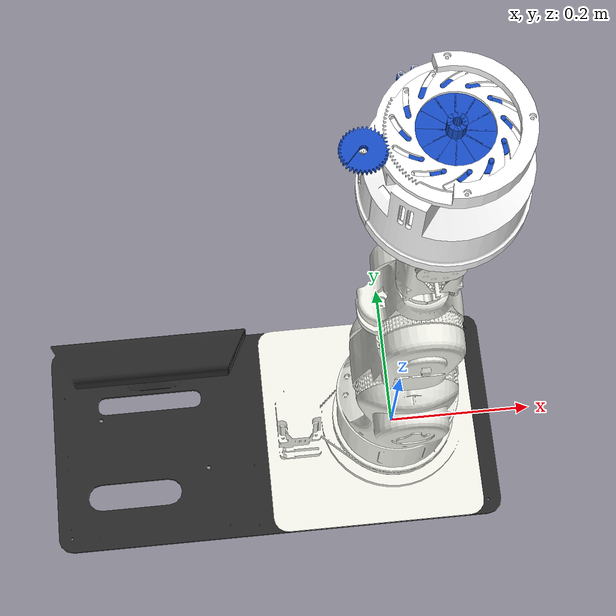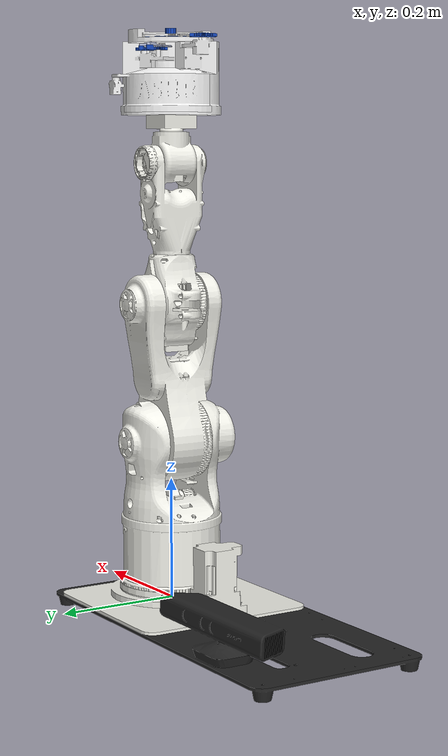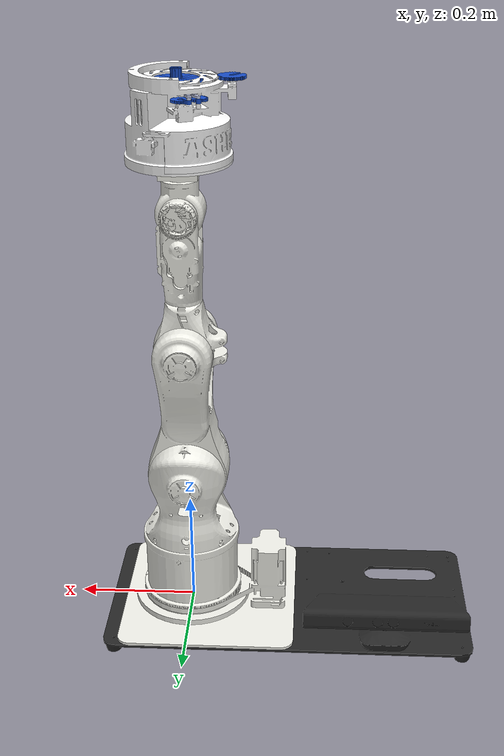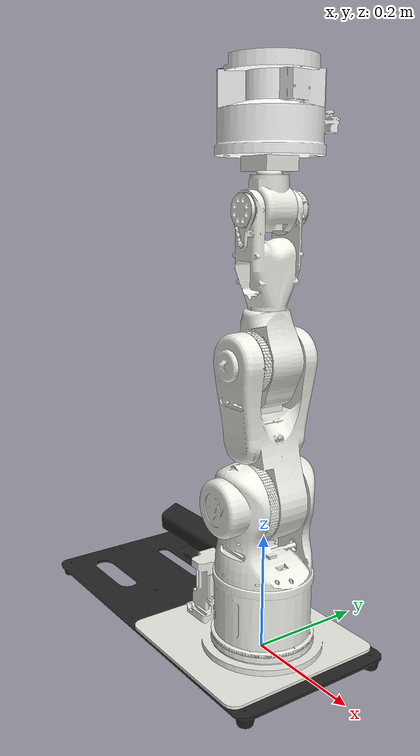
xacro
<?xml version="1.0"?>
<robot xmlns:xacro="http://www.ros.org/wiki/xacro" name="probot_anno">

    <xacro:arg name="initial_positions_file" default="$(find moveit_config)/config/initial_positions.yaml" />

    <xacro:arg name="use_mock_hardware" default="true" />
    <xacro:arg name="use_real_hardware" default="false" />
    <xacro:arg name="use_gazebo" default="false" />
    <xacro:arg name="use_isaac" default="false" />

    <xacro:include filename="$(find probot_description)/urdf/probot_anno_macro.xacro" />
    <xacro:include filename="$(find probot_description)/urdf/gripper_macro.xacro" />
    <xacro:include filename="$(find probot_description)/urdf/probot.ros2_control.xacro" />

    <xacro:probot_anno_macro use_gazebo="$(arg use_gazebo)" />

    <xacro:probot_gripper parent="link_6" use_gazebo="$(arg use_gazebo)" />

    <xacro:probot_anno_ros2_control
        name="ProbotSystem"
        initial_positions_file="$(arg initial_positions_file)"
        use_mock_hardware="$(arg use_mock_hardware)"
        use_real_hardware="$(arg use_real_hardware)"
        use_gazebo="$(arg use_gazebo)"
        use_isaac="$(arg use_isaac)"
    />

    <xacro:if value="$(arg use_gazebo)">
        <gazebo>
            <plugin filename="ign_ros2_control-system" name="ign_ros2_control::IgnitionROS2ControlPlugin">
                <parameters>$(find moveit_config)/config/ros2_controllers.yaml</parameters>
            </plugin>
        </gazebo>
    </xacro:if>

</robot>

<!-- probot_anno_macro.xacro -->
<robot xmlns:xacro="http://ros.org/wiki/xacro">

  <xacro:macro name="probot_anno_macro" params="use_gazebo">
    <xacro:property name="M_PI" value="3.1415926536"/>

    <!-- Materials -->
    <material name="offwhite">
      <color rgba="0.95 0.95 0.92 1" />
    </material>
    <material name="kinect_dark">
      <color rgba="0.15 0.15 0.15 1" /> <!-- The classic dark matte grey of the Kinect -->
    </material>

    <!-- Fix robot to world -->
    <link name="world"/>
    <joint name="world_to_robot_base" type="fixed">
      <origin xyz="0 0 0" rpy="0 0 0" />
      <parent link="world" />
      <child link="robot_base" />
    </joint>

    <!-- New Robot Base -->
    <link name="robot_base">
      <inertial>
        <origin xyz="-0.26475 0.051293 0.019346" rpy="0 0 0" />
        <mass value="1.4191" />
        <inertia ixx="0.012341" ixy="0.0054099" ixz="0.0023347" iyy="0.03677" iyz="-0.0018374" izz="0.047034" />
      </inertial>
      <visual>
        <origin xyz="0 0 0" rpy="0 0 0" />
        <geometry>
          <mesh filename="package://probot_description/meshes/robot_base.STL" />
        </geometry>
      <material name="kinect_dark" />
      </visual>
      <collision>
        <origin xyz="0 0 0" rpy="0 0 0" />
        <geometry>
          <mesh filename="package://probot_description/meshes/robot_base.STL" />
        </geometry>
      </collision>
    </link>

    <!-- Kinect optical frames -->
    <link name="camera_link1"/>
    <joint name="camera_joint1" type="fixed">
      <origin xyz="-0.27393 0.13681 0.05339" rpy="-1.509 0 0" />
      <parent link="robot_base" />
      <child link="camera_link1" />
    </joint>

    <link name="camera_link2"/>
    <joint name="camera_joint2" type="fixed">
      <origin xyz="-0.32393 0.13681 0.05339" rpy="-1.509 0 0" />
      <parent link="robot_base" />
      <child link="camera_link2" />
    </joint>

    <link name="camera_link3"/>
    <joint name="camera_joint3" type="fixed">
      <origin xyz="-0.34993 0.13681 0.05339" rpy="-1.509 0 0" />
      <parent link="robot_base" />
      <child link="camera_link3" />
    </joint>

    <link name="base_footprint"/>
    <joint name="robot_base_to_base_footprint" type="fixed">
      <origin xyz="0 0 -0.017" rpy="0 0 0"/>
      <parent link="robot_base"/>
      <child link="base_footprint"/>
    </joint>

    <joint name="joint_0" type="fixed">
      <origin xyz="0 0 0.0532" rpy="0 0 0" />
      <parent link="base_footprint" />
      <child link="base_link" />
    </joint>

    <link name="base_link">
      <inertial>
        <origin xyz="-0.010934 0.23134 0.0051509" rpy="0 0 0" />
        <mass value="0.286755864167795" />
        <inertia
          ixx="0.000914891478336648" ixy="-9.74616219194614E-08" ixz="-1.22707969258407E-10"
          iyy="0.000918304334803416" iyz="-7.53317610970858E-09" izz="0.00181941891671005" />
      </inertial>
      <visual>
        <origin xyz="0.017266 0 0" rpy="0 0 0" />
        <geometry>
          <mesh filename="package://probot_description/meshes/new_base_link.stl" />
        </geometry>
      <material name="offwhite" />
      </visual>
      <collision>
        <origin xyz="0.017266 0 0" rpy="0 0 0" />
        <geometry>
          <mesh filename="package://probot_description/meshes/new_base_link.stl" />
        </geometry>
      </collision>
    </link>

    <link name="link_1">
      <inertial>
        <origin xyz="-0.010934 0.23134 0.0051509" rpy="0 0 0" />
        <mass value="1.50473234946919" />
        <inertia
          ixx="0.00667121219534555" ixy="-8.54445620252032E-06" ixz="1.56560865622562E-07"
          iyy="0.00595997019373921" iyz="0.000424090863023404" izz="0.006430374759868" />
      </inertial>
      <visual>
        <origin xyz="0 0 0" rpy="0 0 0" />
        <geometry>
          <mesh filename="package://probot_description/meshes/link_1.STL" />
        </geometry>
        <material name="offwhite" />
      </visual>
      <collision>
        <origin xyz="0 0 0" rpy="0 0 0" />
        <geometry>
          <mesh filename="package://probot_description/meshes/link_1.STL" />
        </geometry>
      </collision>
    </link>
    <joint name="joint_1" type="revolute">
      <origin xyz="0 0 0" rpy="1.5708 0 0" />
      <parent link="base_link" />
      <child link="link_1" />
      <axis xyz="0 1 0" />
      <limit lower="-3.1416" upper="3.1416" effort="100" velocity="3" />
    </joint>

    <link name="link_2">
      <inertial>
        <origin xyz="-0.010934 0.23134 0.0051509" rpy="0 0 0" />
        <mass value="1.00050619907027" />
        <inertia
          ixx="0.0014522332353461" ixy="-8.9482731163037E-06" ixz="2.82386498605548E-05"
          iyy="0.00136522040691973" iyz="3.07414967244519E-06" izz="0.0024851244648194" />
      </inertial>
      <visual>
        <origin xyz="0 0 0" rpy="0 0 0" />
        <geometry>
          <mesh filename="package://probot_description/meshes/link_2.STL" />
        </geometry>
        <material name="offwhite" />
      </visual>
      <collision>
        <origin xyz="0 0 0" rpy="0 0 0" />
        <geometry>
          <mesh filename="package://probot_description/meshes/link_2.STL" />
        </geometry>
      </collision>
    </link>
    <joint name="joint_2" type="revolute">
      <origin xyz="0 0.2305 0" rpy="0 0 0" />
      <parent link="link_1" />
      <child link="link_2" />
      <axis xyz="0 0 1" />
      <limit lower="-2.0071" upper="2.0071" effort="100" velocity="3" />
    </joint>

    <link name="link_3">
      <inertial>
        <origin xyz="-0.010934 0.23134 0.0051509" rpy="0 0 0" />
        <mass value="0.549520755006072" />
        <inertia
          ixx="0.000672536702276881" ixy="-6.59360128441997E-06" ixz="-9.19434642556495E-07"
          iyy="0.000480817179261754" iyz="4.15241325610066E-06" izz="0.001032595781869" />
      </inertial>
      <visual>
        <origin xyz="0 0 0" rpy="0 0 0" />
        <geometry>
          <mesh filename="package://probot_description/meshes/link_3.STL" />
        </geometry>
        <material name="offwhite" />
      </visual>
      <collision>
        <origin xyz="0 0 0" rpy="0 0 0" />
        <geometry>
          <mesh filename="package://probot_description/meshes/link_3.STL" />
        </geometry>
      </collision>
    </link>
    <joint name="joint_3" type="revolute">
      <origin xyz="0 0.225 0" rpy="0 0 1.5708" />
      <parent link="link_2" />
      <child link="link_3" />
      <axis xyz="0 0 1" />
      <limit lower="-2.2689" upper="2.2689" effort="100" velocity="3" />
    </joint>

    <link name="link_4">
      <inertial>
        <origin xyz="-0.010934 0.23134 0.0051509" rpy="0 0 0" />
        <mass value="0.952497713016407" />
        <inertia
          ixx="0.00530614361480367" ixy="7.10404845280282E-20" ixz="-3.14301719378985E-20"
          iyy="0.00354259274696511" iyz="-6.5480532041068E-19" izz="0.00221010202882688" />
      </inertial>
      <visual>
        <origin xyz="0 0 0" rpy="0 0 0" />
        <geometry>
          <mesh filename="package://probot_description/meshes/link_4.STL" />
        </geometry>
        <material name="offwhite" />
      </visual>
      <collision>
        <origin xyz="0 0 0" rpy="0 0 0" />
        <geometry>
          <mesh filename="package://probot_description/meshes/link_4.STL" />
        </geometry>
      </collision>
    </link>
    <joint name="joint_4" type="revolute">
      <origin xyz="0.021 0 0.002" rpy="0 0 0" />
      <parent link="link_3" />
      <child link="link_4" />
      <axis xyz="1 0 0" />
      <limit lower="-3.1416" upper="3.1416" effort="100" velocity="3" />
    </joint>

    <link name="link_5">
      <inertial>
        <origin xyz="-0.010934 0.23134 0.0051509" rpy="0 0 0" />
        <mass value="0.393287799668792" />
        <inertia
          ixx="0.000319382332386347" ixy="-9.00754957688623E-10" ixz="-1.75182555785641E-09"
          iyy="0.000272873273899642" iyz="-4.5738506474632E-10" izz="0.000292993325719614" />
      </inertial>
      <visual>
        <origin xyz="0 0 0" rpy="0 0 0" />
        <geometry>
          <mesh filename="package://probot_description/meshes/link_5.STL" />
        </geometry>
        <material name="offwhite" />
      </visual>
      <collision>
        <origin xyz="0 0 0" rpy="0 0 0" />
        <geometry>
          <mesh filename="package://probot_description/meshes/link_5.STL" />
        </geometry>
      </collision>
    </link>
    <joint name="joint_5" type="revolute">
      <origin xyz="0.20586 0 0" rpy="0 0 1.5708" />
      <parent link="link_4" />
      <child link="link_5" />
      <axis xyz="0 0 1" />
      <limit lower="-2.3562" upper="2.3562" effort="100" velocity="3" />
    </joint>

    <link name="link_6">
      <inertial>
        <origin xyz="-0.010934 0.23134 0.0051509" rpy="0 0 0" />
        <mass value="0.00628105868776632" />
        <inertia
          ixx="5.52992389755476E-07" ixy="-2.81554428275222E-22" ixz="-1.40088624914581E-22"
          iyy="5.52992389755476E-07" iyz="4.83070888700992E-24" izz="1.08002978042972E-06" />
      </inertial>
      <visual>
        <origin xyz="0 0 0" rpy="0 0 0" />
        <geometry>
          <mesh filename="package://probot_description/meshes/link_6.STL" />
        </geometry>
        <material name="offwhite" />
      </visual>
      <collision>
        <origin xyz="0 0 0" rpy="0 0 0" />
        <geometry>
          <mesh filename="package://probot_description/meshes/link_6.STL" />
        </geometry>
      </collision>
    </link>
    <joint name="joint_6" type="revolute">
      <origin xyz="0 -0.042 0" rpy="0 0 0" />
      <parent link="link_5" />
      <child link="link_6" />
      <axis xyz="0 -1 0" />
      <limit lower="-3.1416" upper="3.1416" effort="100" velocity="3" />
    </joint>

    <!-- GAZEBO SENSORS: KINECT RGB-D                              -->
    <xacro:if value="${use_gazebo}">
      <gazebo reference="camera_link2">
        <sensor name="kinect_rgbd" type="rgbd_camera">
          <pose>0 0 0.01 1.5708 -1.5708 0</pose>
          <always_on>true</always_on>
          <update_rate>30.0</update_rate>
          <visualize>true</visualize>
          <topic>/camera/kinect</topic>
          <camera>
            <horizontal_fov>1.047</horizontal_fov>
            <image>
              <width>640</width>
              <height>480</height>
              <format>R8G8B8</format>
            </image>
            <clip>
              <near>0.05</near>
              <far>10.0</far>
            </clip>
          </camera>
        </sensor>
      </gazebo>
    </xacro:if>

    </xacro:macro>
</robot>

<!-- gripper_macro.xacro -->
<robot xmlns:xacro="http://ros.org/wiki/xacro">

  <xacro:macro name="probot_gripper" params="parent use_gazebo">

    <!-- Standardized Gripper Materials -->
    <material name="gripper_white">
      <color rgba="1 1 1 1" />
    </material>
    <material name="gripper_blue">
      <color rgba="0.094118 0.30196 0.77647 1" />
    </material>
    <material name="gripper_body">
      <color rgba="0.79216 0.81961 0.93333 1" />
    </material>

    <!-- Attachment joint to Link_6 -->
    <joint name="arm_gripper_joint" type="fixed">
      <origin xyz="0 -0.013 0" rpy="1.5708 0 0" />
      <parent link="${parent}" />
      <child link="Container_link" />
    </joint>

    <!-- Main Container -->
    <link name="Container_link">
      <inertial>
        <origin xyz="-0.007738 0.003131 0.081807" rpy="0 0 0" />
        <mass value="0.57288" />
        <inertia ixx="0.0024146" ixy="-0.00017007" ixz="-1.9739E-05" iyy="0.0023925" iyz="7.7694E-05" izz="0.0020505" />
      </inertial>
      <visual>
        <origin xyz="0 0 0" rpy="0 0 0" />
        <geometry>
          <mesh filename="package://probot_description/meshes/Container_link.STL" />
        </geometry>
        <material name="gripper_white" />
      </visual>
      <collision>
        <origin xyz="0 0 0" rpy="0 0 0" />
        <geometry>
          <mesh filename="package://probot_description/meshes/Container_link.STL" />
        </geometry>
      </collision>
    </link>

    <!-- Door -->
    <link name="Door_Link">
      <inertial>
        <origin xyz="0.079847 -0.042299 0.026388" rpy="0 0 0" />
        <mass value="0.072634" />
        <inertia ixx="9.2526E-05" ixy="5.1964E-05" ixz="-6.1919E-06" iyy="7.7534E-05" iyz="2.6661E-06" izz="0.00012337" />
      </inertial>
      <visual>
        <origin xyz="0 0 0" rpy="0 0 0" />
        <geometry>
          <mesh filename="package://probot_description/meshes/Door_Link.STL" />
        </geometry>
        <material name="gripper_white" />
      </visual>
      <collision>
        <origin xyz="0 0 0" rpy="0 0 0" />
        <geometry>
          <mesh filename="package://probot_description/meshes/Door_Link.STL" />
        </geometry>
      </collision>
    </link>
    <joint name="Door_Joint" type="revolute">
      <origin xyz="-0.0325765613470637 -0.0827398002739313 0.0809999999999903" rpy="-3.14159265358979 0 0" />
      <parent link="Container_link" />
      <child link="Door_Link" />
      <axis xyz="0 0 -1" />
      <limit lower="-3.14" upper="0" effort="10" velocity="6.26" />
    </joint>

    <!-- Active Scissors System -->
    <link name="Active_Scissors_Gear_Link">
      <inertial>
        <origin xyz="0.0013957 -0.0014497 0.0028995" rpy="0 0 0" />
        <mass value="0.0028486" />
        <inertia ixx="1.8787E-07" ixy="5.3502E-08" ixz="-3.0229E-09" iyy="1.8466E-07" iyz="3.0861E-09" izz="3.6285E-07" />
      </inertial>
      <visual>
        <origin xyz="0 0 0" rpy="0 0 0" />
        <geometry>
          <mesh filename="package://probot_description/meshes/Active_Scissors_Gear_Link.STL" />
        </geometry>
        <material name="gripper_blue" />
      </visual>
      <collision>
        <origin xyz="0 0 0" rpy="0 0 0" />
        <geometry>
          <mesh filename="package://probot_description/meshes/Active_Scissors_Gear_Link.STL" />
        </geometry>
      </collision>
    </link>
    <joint name="Active_Scissors_Gear_Joint" type="revolute">
      <origin xyz="0.0116745834389464 -0.0551236385761704 0.122199999999998" rpy="0 0 0" />
      <parent link="Container_link" />
      <child link="Active_Scissors_Gear_Link" />
      <axis xyz="0 0 -1" />
      <limit lower="0" upper="0.5" effort="10" velocity="6.28" />
    </joint>

    <link name="Active_Blade_Link">
      <inertial>
        <origin xyz="-0.00876871024480015 0.0311631307249487 0.00193034918440163" rpy="0 0 0" />
        <mass value="0.00120822711123095" />
        <inertia ixx="6.98348086660056E-07" ixy="2.41232682980469E-07" ixz="-2.3592171209022E-09" iyy="9.13337738958124E-08" iyz="6.93196770741286E-09" izz="7.86989865387403E-07" />
      </inertial>
      <visual>
        <origin xyz="0 0 0" rpy="0 0 0" />
        <geometry>
          <mesh filename="package://probot_description/meshes/Active_Blade_Link.STL" />
        </geometry>
        <material name="gripper_body" />
      </visual>
      <collision>
        <origin xyz="0 0 0" rpy="0 0 0" />
        <geometry>
          <mesh filename="package://probot_description/meshes/Active_Blade_Link.STL" />
        </geometry>
      </collision>
    </link>
    <joint name="Active_Blade_Joint" type="fixed">
      <origin xyz="0.0136451186878765 -0.0139305684016784 0.00689999999999995" rpy="0 0 0" />
      <parent link="Active_Scissors_Gear_Link" />
      <child link="Active_Blade_Link" />
    </joint>

    <!-- Passive Scissors System -->
    <link name="Passive_Scissors_Gear_Link">
      <inertial>
        <origin xyz="0.00040984 -0.003076 0.0022713" rpy="0 0 0" />
        <mass value="0.0032079" />
        <inertia ixx="2.8043E-07" ixy="1.9421E-08" ixz="-1.8444E-09" iyy="1.3877E-07" iyz="1.3404E-08" izz="4.0476E-07" />
      </inertial>
      <visual>
        <origin xyz="0 0 0" rpy="0 0 0" />
        <geometry>
          <mesh filename="package://probot_description/meshes/Passive_Scissors_Gear_Link.STL" />
        </geometry>
        <material name="gripper_blue" />
      </visual>
      <collision>
        <origin xyz="0 0 0" rpy="0 0 0" />
        <geometry>
          <mesh filename="package://probot_description/meshes/Passive_Scissors_Gear_Link.STL" />
        </geometry>
      </collision>
    </link>
    <joint name="Passive_Scissors_Gear_Joint" type="revolute">
      <origin xyz="0.0356480493609751 -0.0439561747779156 0.1231" rpy="0 0 0" />
      <parent link="Container_link" />
      <child link="Passive_Scissors_Gear_Link" />
      <axis xyz="0 0 -1" />
      <limit lower="-6.28" upper="6.28" effort="10" velocity="6.28" />
      <mimic joint="Active_Scissors_Gear_Joint" multiplier="-1" offset="0" />
    </joint>

    <link name="Passive_Blade_Link">
      <inertial>
        <origin xyz="-0.017306 0.027376 0.0019297" rpy="0 0 0" />
        <mass value="0.0012073" />
        <inertia ixx="6.0259E-07" ixy="3.2705E-07" ixz="-3.5679E-09" iyy="1.8677E-07" iyz="6.3783E-09" izz="7.8667E-07" />
      </inertial>
      <visual>
        <origin xyz="0 0 0" rpy="0 0 0" />
        <geometry>
          <mesh filename="package://probot_description/meshes/Passive_Blade_Link.STL" />
        </geometry>
        <material name="gripper_body" />
      </visual>
      <collision>
        <origin xyz="0 0 0" rpy="0 0 0" />
        <geometry>
          <mesh filename="package://probot_description/meshes/Passive_Blade_Link.STL" />
        </geometry>
      </collision>
    </link>
    <joint name="Passive_Blade_Joint" type="fixed">
      <origin xyz="0.00264443875986524 -0.0193198587894807 0.00720000000000001" rpy="0 0 0" />
      <parent link="Passive_Scissors_Gear_Link" />
      <child link="Passive_Blade_Link" />
    </joint>

    <!-- NEW Iris System -->
    <link name="Iris_Active_Gear_Link">
      <inertial>
        <origin xyz="-0.0004109 0.00041447 -0.0031643" rpy="0 0 0" />
        <mass value="0.0055356" />
        <inertia ixx="6.0526E-07" ixy="-2.272E-08" ixz="-2.2038E-09" iyy="6.057E-07" iyz="2.2229E-09" izz="1.1903E-06" />
      </inertial>
      <visual>
        <origin xyz="0 0 0" rpy="0 0 0" />
        <geometry>
          <mesh filename="package://probot_description/meshes/Iris_Active_Gear_Link.STL" />
        </geometry>
        <material name="gripper_blue" />
      </visual>
      <collision>
        <origin xyz="0 0 0" rpy="0 0 0" />
        <geometry>
          <mesh filename="package://probot_description/meshes/Iris_Active_Gear_Link.STL" />
        </geometry>
      </collision>
    </link>
    <joint name="Iris_Active_Gear_Joint" type="revolute">
      <origin xyz="0.0799093458453353 0.0121608340345881 0.14234666667" rpy="-3.14159265358979 0 0" />
      <parent link="Container_link" />
      <child link="Iris_Active_Gear_Link" />
      <axis xyz="0 0 1" />
      <limit lower="0.0" upper="1.57" effort="10" velocity="6.28" />
    </joint>

    <link name="Iris_Passive_Gear_Link">
      <inertial>
        <origin xyz="0.0020485 0.00029915 0.0015558" rpy="0 0 0" />
        <mass value="0.020685" />
        <inertia ixx="2.3364E-05" ixy="-2.5397E-07" ixz="-5.6861E-21" iyy="2.5066E-05" iyz="3.9617E-20" izz="4.8396E-05" />
      </inertial>
      <visual>
        <origin xyz="0 0 0" rpy="0 0 0" />
        <geometry>
          <mesh filename="package://probot_description/meshes/Iris_Passive_Gear_Link.STL" />
        </geometry>
        <material name="gripper_white" />
      </visual>
      <collision>
        <origin xyz="0 0 0" rpy="0 0 0" />
        <geometry>
          <mesh filename="package://probot_description/meshes/Iris_Passive_Gear_Link.STL" />
        </geometry>
      </collision>
    </link>
    <joint name="Iris_Passive_Gear_Joint" type="revolute">
      <origin xyz="0 0 0.144801833336666" rpy="0 0 0" />
      <parent link="Container_link" />
      <child link="Iris_Passive_Gear_Link" />
      <axis xyz="0 0 -1" />
      <limit lower="-3.14" upper="3.14" effort="10" velocity="6.28" />
      <mimic joint="Iris_Active_Gear_Joint" multiplier="-0.3367" offset="0" />
    </joint>

    <!-- The 12 Iris Blades (Xacro macro for repetitive iris blades) -->
    <xacro:macro name="iris_blade" params="num xyz rpy mass origin_xyz ixx ixy ixz iyy iyz izz mimic_joint multiplier">
      <link name="Iris${num}_Link">
        <inertial>
          <origin xyz="${origin_xyz}" rpy="0 0 0" />
          <mass value="${mass}" />
          <inertia ixx="${ixx}" ixy="${ixy}" ixz="${ixz}" iyy="${iyy}" iyz="${iyz}" izz="${izz}" />
        </inertial>
        <visual>
          <origin xyz="0 0 0" rpy="0 0 0" />
          <geometry>
            <mesh filename="package://probot_description/meshes/Iris${num}_Link.STL" />
          </geometry>
          <material name="gripper_blue" />
        </visual>
        <collision>
          <origin xyz="0 0 0" rpy="0 0 0" />
          <geometry>
            <mesh filename="package://probot_description/meshes/Iris${num}_Link.STL" />
          </geometry>
        </collision>
      </link>
      <joint name="Iris${num}_Joint" type="revolute">
        <origin xyz="${xyz}" rpy="${rpy}" />
        <parent link="Iris_Passive_Gear_Link" />
        <child link="Iris${num}_Link" />
        <axis xyz="0 0 -1" />
        <limit lower="-3.14" upper="3.14" effort="10" velocity="6.28" />
        <mimic joint="${mimic_joint}" multiplier="${multiplier}" offset="0" />
      </joint>
    </xacro:macro>

    <xacro:iris_blade num="1" xyz="0.0326097658681697 0.0257615349190274 0" rpy="-3.14159265358979 0 3.14159265358979" mass="0.00193549938309683" origin_xyz="0.0123168506307957 -0.010323478737693 -0.000857619665064174" ixx="1.74887754763572E-07" ixy="1.5772663379958E-07" ixz="5.21732779151219E-08" iyy="2.91567386136741E-07" iyz="-3.86173848863187E-08" izz="4.0210073932324E-07" mimic_joint="Iris_Passive_Gear_Joint" multiplier="1.6"/>
    <xacro:iris_blade num="2" xyz="0.0411216531128113 0.0060052607462728 0" rpy="3.14159265358979 0 0" mass="0.00193549941167017" origin_xyz="-0.0158284449856681 0.00278196952962637 -0.000857619755370576" ixx="6.74623909855893E-08" ixy="2.83395528279417E-08" ixz="-6.44920774355567E-08" iyy="3.98992752233588E-07" iyz="7.35699742033941E-09" izz="4.02100738833512E-07" mimic_joint="Iris1_Joint" multiplier="1"/>
    <xacro:iris_blade num="3" xyz="0.0386150266144425 -0.0153601181937839 0" rpy="-3.14159265358979 0 3.14159265358979" mass="0.0019355" origin_xyz="0.015099 0.005505 -0.00085762" ixx="1.258E-07" ixy="-1.2939E-07" ixz="5.953E-08" iyy="3.4065E-07" iyz="2.5875E-08" izz="4.021E-07" mimic_joint="Iris1_Joint" multiplier="1"/>
    <xacro:iris_blade num="4" xyz="0.0257615349190274 -0.0326097658681697 0" rpy="3.14159265358979 0 0" mass="0.00193549938309683" origin_xyz="-0.0103234787376935 -0.0123168506307958 -0.000857619665064147" ixx="2.91567386136742E-07" ixy="-1.57726633799579E-07" ixz="-3.86173848863183E-08" iyy="1.74887754763571E-07" iyz="-5.21732779151217E-08" izz="4.0210073932324E-07" mimic_joint="Iris1_Joint" multiplier="1"/>
    <xacro:iris_blade num="5" xyz="0.00600526074627281 -0.0411216531128113 0" rpy="-3.14159265358979 0 3.14159265358979" mass="0.0019355" origin_xyz="0.002782 0.015828 -0.00085762" ixx="3.9899E-07" ixy="-2.834E-08" ixz="7.357E-09" iyy="6.7462E-08" iyz="6.4492E-08" izz="4.021E-07" mimic_joint="Iris1_Joint" multiplier="1"/>
    <xacro:iris_blade num="6" xyz="-0.0153601181937839 -0.0386150266144425 0" rpy="3.14159265358979 0 0" mass="0.00193549939775868" origin_xyz="0.00550496616958923 -0.0150988202149194 -0.000857619711433583" ixx="3.40652937863127E-07" ixy="1.2938707802273E-07" ixz="2.58746916068284E-08" iyy="1.25802205036768E-07" iyz="-5.95302759891289E-08" izz="4.02100739880777E-07" mimic_joint="Iris1_Joint" multiplier="1"/>
    <xacro:iris_blade num="7" xyz="-0.0326097658681697 -0.0257615349190274 0" rpy="3.14159265358979 0 0" mass="0.0019355" origin_xyz="0.012317 -0.010323 -0.00085762" ixx="1.7489E-07" ixy="1.5773E-07" ixz="5.2173E-08" iyy="2.9157E-07" iyz="-3.8617E-08" izz="4.021E-07" mimic_joint="Iris1_Joint" multiplier="1"/>
    <xacro:iris_blade num="8" xyz="-0.0411216531128113 -0.00600526074627281 0" rpy="-3.14159265358979 0 3.14159265358979" mass="0.00193549941167017" origin_xyz="-0.0158284449856679 0.00278196952962714 -0.000857619755370603" ixx="6.74623909855889E-08" ixy="2.83395528279398E-08" ixz="-6.44920774355568E-08" iyy="3.98992752233588E-07" iyz="7.35699742033891E-09" izz="4.02100738833511E-07" mimic_joint="Iris1_Joint" multiplier="1"/>
    <xacro:iris_blade num="9" xyz="-0.0386150266144425 0.0153601181937839 0" rpy="3.14159265358979 0 0" mass="0.0019355" origin_xyz="0.015099 0.005505 -0.00085762" ixx="1.258E-07" ixy="-1.2939E-07" ixz="5.953E-08" iyy="3.4065E-07" iyz="2.5875E-08" izz="4.021E-07" mimic_joint="Iris1_Joint" multiplier="1"/>
    <xacro:iris_blade num="10" xyz="-0.0257615349190274 0.0326097658681697 0" rpy="3.14159265358979 0 0" mass="0.00193549938309683" origin_xyz="0.0103234787376935 0.0123168506307951 -0.000857619665064174" ixx="2.91567386136745E-07" ixy="-1.57726633799579E-07" ixz="3.86173848863182E-08" iyy="1.74887754763569E-07" iyz="5.21732779151223E-08" izz="4.0210073932324E-07" mimic_joint="Iris1_Joint" multiplier="1"/>
    <xacro:iris_blade num="11" xyz="-0.00600526074627281 0.0411216531128113 0" rpy="3.14159265358979 0 0" mass="0.00193549941167016" origin_xyz="0.00278196952962685 0.0158284449856677 -0.000857619755370576" ixx="3.98992752233588E-07" ixy="-2.83395528279387E-08" ixz="7.35699742033876E-09" iyy="6.74623909855888E-08" iyz="6.44920774355571E-08" izz="4.02100738833512E-07" mimic_joint="Iris1_Joint" multiplier="1"/>
    <xacro:iris_blade num="12" xyz="0.0153601181937839 0.0386150266144425 0" rpy="3.14159265358979 0 0" mass="0.0019355" origin_xyz="-0.005505 0.015099 -0.00085762" ixx="3.4065E-07" ixy="1.2939E-07" ixz="-2.5875E-08" iyy="1.258E-07" iyz="5.953E-08" izz="4.021E-07" mimic_joint="Iris1_Joint" multiplier="1"/>

    <!-- ESP Cameras & LEDs -->
    <link name="esp_camera1" />
    <joint name="esp_camera1_joint" type="fixed">
      <origin xyz="-0.0323689860368106 -0.0409983791388274 0.1035" rpy="1.5707963267949 0 2.47327551826551" />
      <parent link="Container_link" />
      <child link="esp_camera1" />
    </joint>

    <link name="esp_camera2" />
    <joint name="esp_camera2_joint" type="fixed">
      <origin xyz="0.0323689860368107 0.0409983791388273 0.1035" rpy="1.5707963267949 0 -0.668317135324279" />
      <parent link="Container_link" />
      <child link="esp_camera2" />
    </joint>

    <link name="LED1_Link" />
    <joint name="LED1_Joint" type="fixed">
      <origin xyz="-0.0358630091313028 -0.00313760673891554 0.1199" rpy="-1.5707963267949 0 -1.48352986419519" />
      <parent link="Container_link" />
      <child link="LED1_Link" />
    </joint>

    <link name="LED2_Link" />
    <joint name="LED2_Joint" type="fixed">
      <origin xyz="0.0357752156926042 0.00307731396636012 0.1199" rpy="1.5707963267949 0 -1.48498761991894" />
      <parent link="Container_link" />
      <child link="LED2_Link" />
    </joint>

    <!-- GAZEBO SENSORS: ESP CAMS                                  -->
    <xacro:if value="${use_gazebo}">

      <!-- ESP Camera 1 -->
      <gazebo reference="esp_camera1">
        <sensor name="esp_camera1_rgb" type="camera">
          <pose>0 0 0.01 -1.5708 -1.5708 0</pose>
          <always_on>true</always_on>
          <update_rate>30.0</update_rate>
          <visualize>true</visualize>
          <topic>/camera/esp1/image_raw</topic>
          <camera>
            <horizontal_fov>1.047</horizontal_fov>
            <image>
              <width>600</width>
              <height>800</height>
              <format>R8G8B8</format>
            </image>
            <clip>
              <near>0.01</near>
              <far>10.0</far>
            </clip>
          </camera>
        </sensor>
      </gazebo>

      <!-- ESP Camera 2 -->
      <gazebo reference="esp_camera2">
        <sensor name="esp_camera2_rgb" type="camera">
          <pose>0 0 0.01 -1.5708 -1.5708 0</pose>
          <always_on>true</always_on>
          <update_rate>30.0</update_rate>
          <visualize>true</visualize>
          <topic>/camera/esp2/image_raw</topic>
          <camera>
            <horizontal_fov>1.047</horizontal_fov>
            <image>
              <width>600</width>
              <height>800</height>
              <format>R8G8B8</format>
            </image>
            <clip>
              <near>0.01</near>
              <far>10.0</far>
            </clip>
          </camera>
        </sensor>
      </gazebo>
    </xacro:if>

  </xacro:macro>
</robot>
